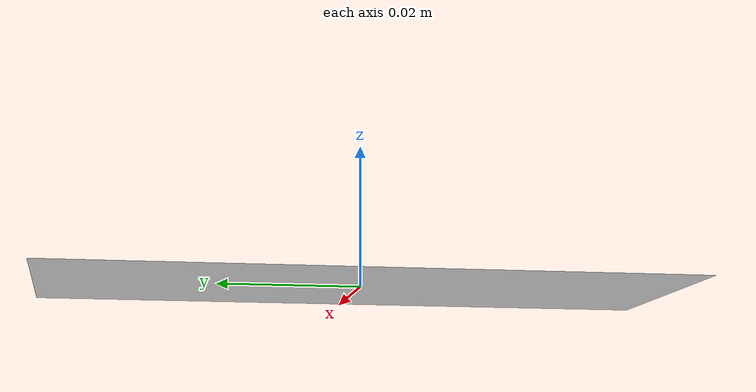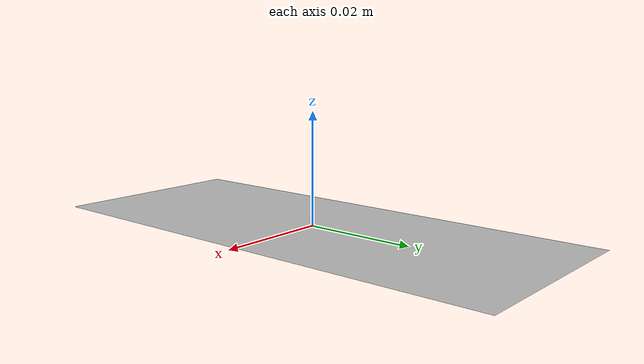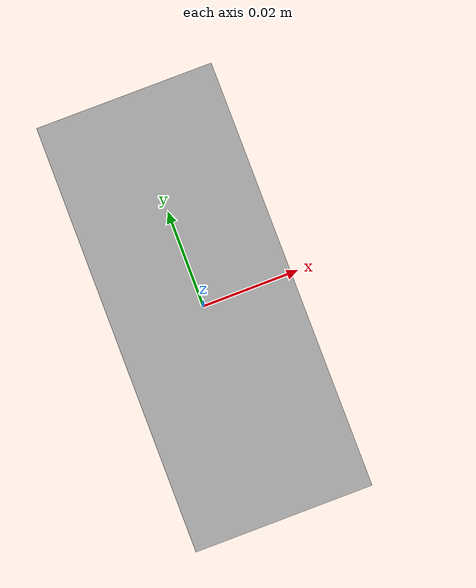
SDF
<?xml version="1.0"?>
<sdf version="1.6">
  <model name="trash_leaf_01">
    <static>true</static>
    <link name="link">
      <visual name="visual">
        <cast_shadows>false</cast_shadows>
        <geometry>
          <mesh>
            <uri>model://trash_leaf_01/meshes/trash_leaf_01.dae</uri>
            <scale>1.0000 1.0000 1.0000</scale>
          </mesh>
        </geometry>
        <transparency>0.0</transparency>
      </visual>
    </link>
  </model>
</sdf>
